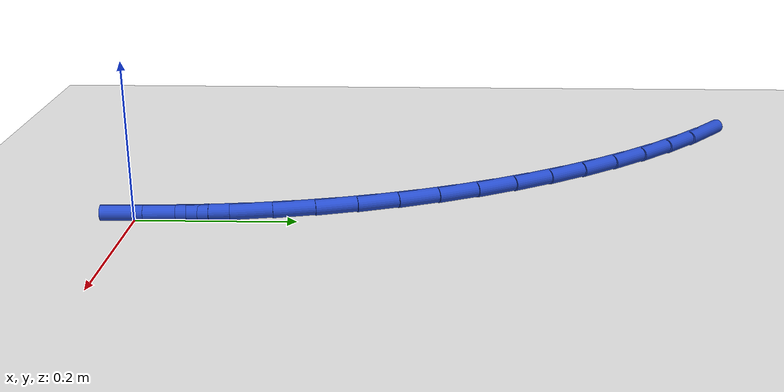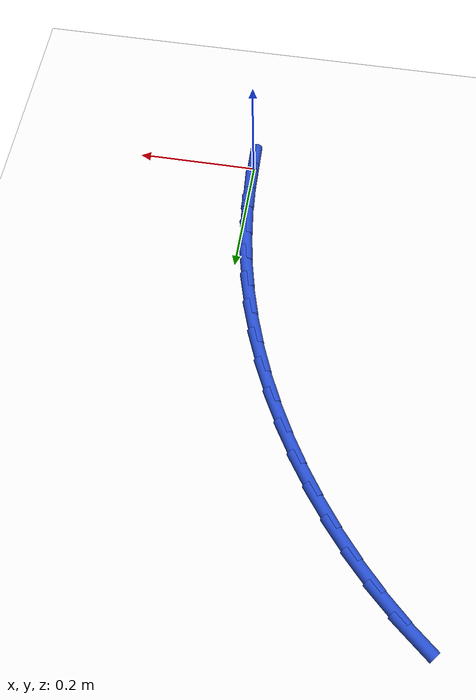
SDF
<sdf version="1.6">
 <world name="default">
  <model name="ground_plane">
   <static>1</static>
   <link name="link">
    <collision name="collision">
     <geometry><plane><normal>0 0 1</normal><size>100 100</size></plane></geometry>
     <surface><friction><ode><mu>100</mu><mu2>50</mu2></ode></friction></surface>
    </collision>
    <visual name="visual">
     <cast_shadows>0</cast_shadows>
     <geometry><plane><normal>0 0 1</normal><size>100 100</size></plane></geometry>
     <material>
      <script><uri>file://media/materials/scripts/gazebo.material</uri><name>Gazebo/WhiteGlow</name></script>
     </material>
    </visual>
   </link>
  </model>
  <model name="line">
   <link name="link_0">
    <pose>4.683753385137379e-17 -9.71445146547012e-17 0.01 0 1.57 -1.5415466141234229</pose>
    <collision name="collision">
     <geometry><cylinder><radius>0.01</radius><length>0.08</length></cylinder></geometry>
    </collision>
    <visual name="visual">
     <material>
      <script><name>Gazebo/Blue</name><uri>file://media/materials/scripts/gazebo.material</uri></script>
     </material>
     <geometry><cylinder><radius>0.01</radius><length>0.08</length></cylinder></geometry>
    </visual>
   </link>
   <link name="link_1">
    <pose>-0.0015380150279130165 0.05256723052702508 0.01 0 1.57 -1.4920785525945508</pose>
    <collision name="collision">
     <geometry><cylinder><radius>0.01</radius><length>0.08</length></cylinder></geometry>
    </collision>
    <visual name="visual">
     <material>
      <script><name>Gazebo/Blue</name><uri>file://media/materials/scripts/gazebo.material</uri></script>
     </material>
     <geometry><cylinder><radius>0.01</radius><length>0.08</length></cylinder></geometry>
    </visual>
   </link>
   <link name="link_2">
    <pose>-0.005651078049573215 0.10471001576973192 0.01 0 1.57 -1.4413954976554058</pose>
    <collision name="collision">
     <geometry><cylinder><radius>0.01</radius><length>0.08</length></cylinder></geometry>
    </collision>
    <visual name="visual">
     <material>
      <script><name>Gazebo/Blue</name><uri>file://media/materials/scripts/gazebo.material</uri></script>
     </material>
     <geometry><cylinder><radius>0.01</radius><length>0.08</length></cylinder></geometry>
    </visual>
   </link>
   <link name="link_3">
    <pose>-0.012376972550586392 0.15639679261851733 0.01 0 1.57 -1.3896657407596729</pose>
    <collision name="collision">
     <geometry><cylinder><radius>0.01</radius><length>0.08</length></cylinder></geometry>
    </collision>
    <visual name="visual">
     <material>
      <script><name>Gazebo/Blue</name><uri>file://media/materials/scripts/gazebo.material</uri></script>
     </material>
     <geometry><cylinder><radius>0.01</radius><length>0.08</length></cylinder></geometry>
    </visual>
   </link>
   <link name="link_4">
    <pose>-0.021753482016558384 0.2075959979637782 0.01 0 1.57 -1.337086301904672</pose>
    <collision name="collision">
     <geometry><cylinder><radius>0.01</radius><length>0.08</length></cylinder></geometry>
    </collision>
    <visual name="visual">
     <material>
      <script><name>Gazebo/Blue</name><uri>file://media/materials/scripts/gazebo.material</uri></script>
     </material>
     <geometry><cylinder><radius>0.01</radius><length>0.08</length></cylinder></geometry>
    </visual>
   </link>
   <link name="link_5">
    <pose>-0.03381838993309504 0.2582760686959115 0.01 0 1.57 -1.283879303797767</pose>
    <collision name="collision">
     <geometry><cylinder><radius>0.01</radius><length>0.08</length></cylinder></geometry>
    </collision>
    <visual name="visual">
     <material>
      <script><name>Gazebo/Blue</name><uri>file://media/materials/scripts/gazebo.material</uri></script>
     </material>
     <geometry><cylinder><radius>0.01</radius><length>0.08</length></cylinder></geometry>
    </visual>
   </link>
   <link name="link_6">
    <pose>-0.048609479785802205 0.3084054417053142 0.01 0 1.57 -1.2302867135892297</pose>
    <collision name="collision">
     <geometry><cylinder><radius>0.01</radius><length>0.08</length></cylinder></geometry>
    </collision>
    <visual name="visual">
     <material>
      <script><name>Gazebo/Blue</name><uri>file://media/materials/scripts/gazebo.material</uri></script>
     </material>
     <geometry><cylinder><radius>0.01</radius><length>0.08</length></cylinder></geometry>
    </visual>
   </link>
   <link name="link_7">
    <pose>-0.06616453506028572 0.3579525538823831 0.01 0 1.57 -1.176563697927617</pose>
    <collision name="collision">
     <geometry><cylinder><radius>0.01</radius><length>0.08</length></cylinder></geometry>
    </collision>
    <visual name="visual">
     <material>
      <script><name>Gazebo/Blue</name><uri>file://media/materials/scripts/gazebo.material</uri></script>
     </material>
     <geometry><cylinder><radius>0.01</radius><length>0.08</length></cylinder></geometry>
    </visual>
   </link>
   <link name="link_8">
    <pose>-0.08652133924139689 0.40688584211648177 0.01 0 1.57 -1.123122845600353</pose>
    <collision name="collision">
     <geometry><cylinder><radius>0.01</radius><length>0.08</length></cylinder></geometry>
    </collision>
    <visual name="visual">
     <material>
      <script><name>Gazebo/Blue</name><uri>file://media/materials/scripts/gazebo.material</uri></script>
     </material>
     <geometry><cylinder><radius>0.01</radius><length>0.08</length></cylinder></geometry>
    </visual>
   </link>
   <link name="link_9">
    <pose>-0.10969133001727463 0.4551376683604355 0.01 0 1.57 -1.0705126214260396</pose>
    <collision name="collision">
     <geometry><cylinder><radius>0.01</radius><length>0.08</length></cylinder></geometry>
    </collision>
    <visual name="visual">
     <material>
      <script><name>Gazebo/Blue</name><uri>file://media/materials/scripts/gazebo.material</uri></script>
     </material>
     <geometry><cylinder><radius>0.01</radius><length>0.08</length></cylinder></geometry>
    </visual>
   </link>
   <link name="link_10">
    <pose>-0.13558152764904877 0.5024974172225608 0.01 0 1.57 -1.0183967133618363</pose>
    <collision name="collision">
     <geometry><cylinder><radius>0.01</radius><length>0.08</length></cylinder></geometry>
    </collision>
    <visual name="visual">
     <material>
      <script><name>Gazebo/Blue</name><uri>file://media/materials/scripts/gazebo.material</uri></script>
     </material>
     <geometry><cylinder><radius>0.01</radius><length>0.08</length></cylinder></geometry>
    </visual>
   </link>
   <link name="link_11">
    <pose>-0.16407308727251932 0.5487190565513388 0.01 0 1.57 -0.9662665491765152</pose>
    <collision name="collision">
     <geometry><cylinder><radius>0.01</radius><length>0.08</length></cylinder></geometry>
    </collision>
    <visual name="visual">
     <material>
      <script><name>Gazebo/Blue</name><uri>file://media/materials/scripts/gazebo.material</uri></script>
     </material>
     <geometry><cylinder><radius>0.01</radius><length>0.08</length></cylinder></geometry>
    </visual>
   </link>
   <link name="link_12">
    <pose>-0.19504716402348624 0.5935565541952508 0.01 0 1.57 -0.9136287551357689</pose>
    <collision name="collision">
     <geometry><cylinder><radius>0.01</radius><length>0.08</length></cylinder></geometry>
    </collision>
    <visual name="visual">
     <material>
      <script><name>Gazebo/Blue</name><uri>file://media/materials/scripts/gazebo.material</uri></script>
     </material>
     <geometry><cylinder><radius>0.01</radius><length>0.08</length></cylinder></geometry>
    </visual>
   </link>
   <link name="link_13">
    <pose>-0.22838491303774947 0.6367638780027775 0.01 0 1.57 -0.8599996142701143</pose>
    <collision name="collision">
     <geometry><cylinder><radius>0.01</radius><length>0.08</length></cylinder></geometry>
    </collision>
    <visual name="visual">
     <material>
      <script><name>Gazebo/Blue</name><uri>file://media/materials/scripts/gazebo.material</uri></script>
     </material>
     <geometry><cylinder><radius>0.01</radius><length>0.08</length></cylinder></geometry>
    </visual>
   </link>
   <link name="link_14">
    <pose>-0.2639674894511089 0.6780949958224001 0.01 0 1.57 -0.8049012894406544</pose>
    <collision name="collision">
     <geometry><cylinder><radius>0.01</radius><length>0.08</length></cylinder></geometry>
    </collision>
    <visual name="visual">
     <material>
      <script><name>Gazebo/Blue</name><uri>file://media/materials/scripts/gazebo.material</uri></script>
     </material>
     <geometry><cylinder><radius>0.01</radius><length>0.08</length></cylinder></geometry>
    </visual>
   </link>
   <link name="link_15">
    <pose>-0.3016760483993647 0.7173038755025997 0.01 0 1.57 -0.7478606063406925</pose>
    <collision name="collision">
     <geometry><cylinder><radius>0.01</radius><length>0.08</length></cylinder></geometry>
    </collision>
    <visual name="visual">
     <material>
      <script><name>Gazebo/Blue</name><uri>file://media/materials/scripts/gazebo.material</uri></script>
     </material>
     <geometry><cylinder><radius>0.01</radius><length>0.08</length></cylinder></geometry>
    </visual>
   </link>
   <link name="link_16">
    <pose>-0.34139174501831676 0.7541444848918575 0.01 0 1.57 -0.6884113948911016</pose>
    <collision name="collision">
     <geometry><cylinder><radius>0.01</radius><length>0.08</length></cylinder></geometry>
    </collision>
    <visual name="visual">
     <material>
      <script><name>Gazebo/Blue</name><uri>file://media/materials/scripts/gazebo.material</uri></script>
     </material>
     <geometry><cylinder><radius>0.01</radius><length>0.08</length></cylinder></geometry>
    </visual>
   </link>
   <link name="link_150">
    <pose>4.336808689942018e-17 -8.326672684688674e-17 0.01 0 1.57 -1.541915409535821</pose>
    <collision name="collision">
     <geometry><cylinder><radius>0.01</radius><length>0.08</length></cylinder></geometry>
    </collision>
    <visual name="visual">
     <material>
      <script><name>Gazebo/Blue</name><uri>file://media/materials/scripts/gazebo.material</uri></script>
     </material>
     <geometry><cylinder><radius>0.01</radius><length>0.08</length></cylinder></geometry>
    </visual>
   </link>
   <link name="link_151">
    <pose>-0.0015171927987542473 0.05251810140879399 0.01 0 1.57 -1.541915409535821</pose>
    <collision name="collision">
     <geometry><cylinder><radius>0.01</radius><length>0.08</length></cylinder></geometry>
    </collision>
    <visual name="visual">
     <material>
      <script><name>Gazebo/Blue</name><uri>file://media/materials/scripts/gazebo.material</uri></script>
     </material>
     <geometry><cylinder><radius>0.01</radius><length>0.08</length></cylinder></geometry>
    </visual>
   </link>
  </model>
 </world>
</sdf>
